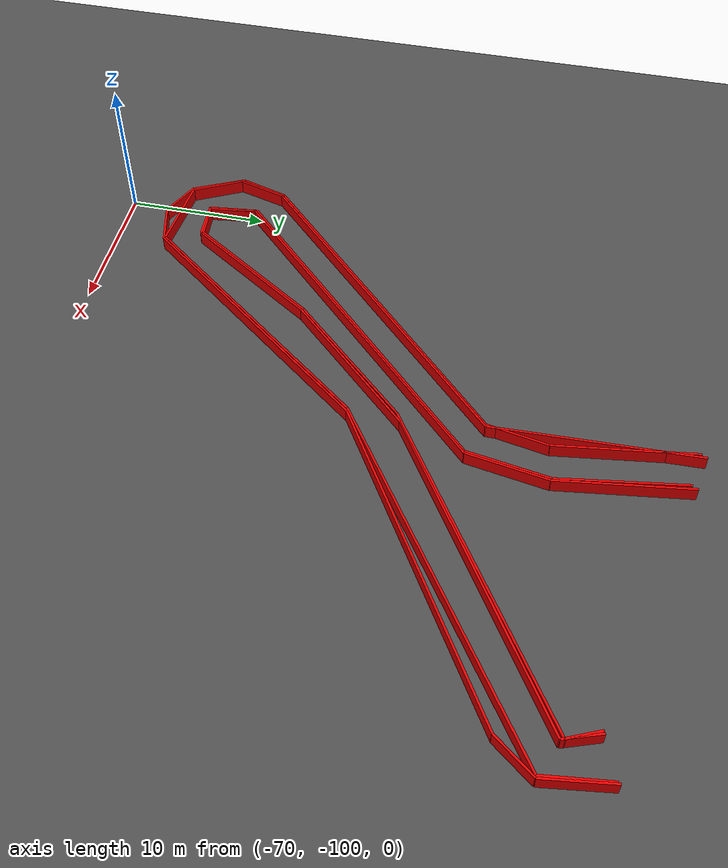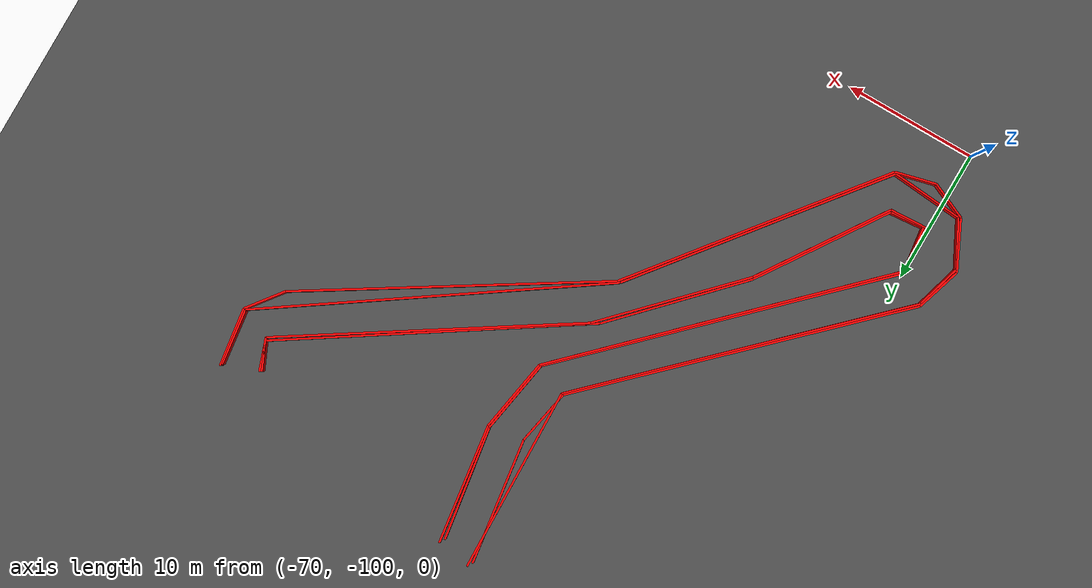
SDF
<sdf version="1.6">
 <world name="track_world">
  <model name="ground_plane">
   <static>true</static>
   <link name="link">
    <collision name="collision">
     <geometry><plane><normal>0 0 1</normal><size>1000 1000</size></plane></geometry>
    </collision>
    <visual name="visual">
     <geometry><plane><normal>0 0 1</normal><size>1000 1000</size></plane></geometry>
     <material><ambient>0.3 0.3 0.3 1</ambient><diffuse>0.3 0.3 0.3 1</diffuse></material>
    </visual>
   </link>
  </model>
  <model name="wall_11">
   <static>true</static>
   <pose>-53.12523416920916 -61.54973182200402 0.5 0 0 -1.435625628145888</pose>
   <link name="link">
    <visual name="visual">
     <geometry><box><size>9.514286059899616 0.15 1.0</size></box></geometry>
     <material><ambient>1 0 0 1</ambient><diffuse>1 0 0 1</diffuse></material>
    </visual>
    <collision name="collision">
     <geometry><box><size>9.514286059899616 0.15 1.0</size></box></geometry>
    </collision>
   </link>
  </model>
  <model name="wall_12">
   <static>true</static>
   <pose>-52.898974169209154 -68.37524182200401 0.5 0 0 -1.7647554740547904</pose>
   <link name="link">
    <visual name="visual">
     <geometry><box><size>4.304229377577341 0.15 1.0</size></box></geometry>
     <material><ambient>1 0 0 1</ambient><diffuse>1 0 0 1</diffuse></material>
    </visual>
    <collision name="collision">
     <geometry><box><size>4.304229377577341 0.15 1.0</size></box></geometry>
    </collision>
   </link>
  </model>
  <model name="wall_13">
   <static>true</static>
   <pose>-62.74128416920916 -79.65053182200401 0.5 0 0 -2.370392319085259</pose>
   <link name="link">
    <visual name="visual">
     <geometry><box><size>26.294336904428693 0.15 1.0</size></box></geometry>
     <material><ambient>1 0 0 1</ambient><diffuse>1 0 0 1</diffuse></material>
    </visual>
    <collision name="collision">
     <geometry><box><size>26.294336904428693 0.15 1.0</size></box></geometry>
    </collision>
   </link>
  </model>
  <model name="wall_14">
   <static>true</static>
   <pose>-72.69672416920916 -90.51101182200401 0.5 0 0 -1.872415373061138</pose>
   <link name="link">
    <visual name="visual">
     <geometry><box><size>3.5543550447865955 0.15 1.0</size></box></geometry>
     <material><ambient>1 0 0 1</ambient><diffuse>1 0 0 1</diffuse></material>
    </visual>
    <collision name="collision">
     <geometry><box><size>3.5543550447865955 0.15 1.0</size></box></geometry>
    </collision>
   </link>
  </model>
  <model name="wall_15">
   <static>true</static>
   <pose>-72.35733416920917 -93.98033182200402 0.5 0 0 -1.1156955182267012</pose>
   <link name="link">
    <visual name="visual">
     <geometry><box><size>3.946419514344623 0.15 1.0</size></box></geometry>
     <material><ambient>1 0 0 1</ambient><diffuse>1 0 0 1</diffuse></material>
    </visual>
    <collision name="collision">
     <geometry><box><size>3.946419514344623 0.15 1.0</size></box></geometry>
    </collision>
   </link>
  </model>
  <model name="wall_16">
   <static>true</static>
   <pose>-70.13244416920915 -96.35606182200402 0.5 0 0 -0.41822432957923056</pose>
   <link name="link">
    <visual name="visual">
     <geometry><box><size>2.9712034216458494 0.15 1.0</size></box></geometry>
     <material><ambient>1 0 0 1</ambient><diffuse>1 0 0 1</diffuse></material>
    </visual>
    <collision name="collision">
     <geometry><box><size>2.9712034216458494 0.15 1.0</size></box></geometry>
    </collision>
   </link>
  </model>
  <model name="wall_17">
   <static>true</static>
   <pose>-67.26648416920915 -96.58232182200402 0.5 0 0 0.24497866312686303</pose>
   <link name="link">
    <visual name="visual">
     <geometry><box><size>3.109646262840842 0.15 1.0</size></box></geometry>
     <material><ambient>1 0 0 1</ambient><diffuse>1 0 0 1</diffuse></material>
    </visual>
    <collision name="collision">
     <geometry><box><size>3.109646262840842 0.15 1.0</size></box></geometry>
    </collision>
   </link>
  </model>
  <model name="wall_18">
   <static>true</static>
   <pose>-59.15883416920916 -87.83360182200403 0.5 0 0 0.9032375815154151</pose>
   <link name="link">
    <visual name="visual">
     <geometry><box><size>21.319861349164537 0.15 1.0</size></box></geometry>
     <material><ambient>1 0 0 1</ambient><diffuse>1 0 0 1</diffuse></material>
    </visual>
    <collision name="collision">
     <geometry><box><size>21.319861349164537 0.15 1.0</size></box></geometry>
    </collision>
   </link>
  </model>
  <model name="wall_19">
   <static>true</static>
   <pose>-42.49101416920916 -73.16441182200401 0.5 0 0 0.5589359023385937</pose>
   <link name="link">
    <visual name="visual">
     <geometry><box><size>23.751672762127733 0.15 1.0</size></box></geometry>
     <material><ambient>1 0 0 1</ambient><diffuse>1 0 0 1</diffuse></material>
    </visual>
    <collision name="collision">
     <geometry><box><size>23.751672762127733 0.15 1.0</size></box></geometry>
    </collision>
   </link>
  </model>
  <model name="wall_20">
   <static>true</static>
   <pose>-31.441984169209157 -65.584701822004 0.5 0 0 0.9179496956941213</pose>
   <link name="link">
    <visual name="visual">
     <geometry><box><size>3.22811696888449 0.15 1.0</size></box></geometry>
     <material><ambient>1 0 0 1</ambient><diffuse>1 0 0 1</diffuse></material>
    </visual>
    <collision name="collision"><geometry><box><size>3.22811696888449 0.15 1.0</size></box></geometry></collision>
   </link>
  </model>
  <model name="wall_21">
   <static>true</static>
   <pose>-30.76320416920916 -62.11538182200401 0.5 0 0 1.7078625011050865</pose>
   <link name="link">
    <visual name="visual">
     <geometry><box><size>4.415774982854082 0.15 1.0</size></box></geometry>
     <material><ambient>1 0 0 1</ambient><diffuse>1 0 0 1</diffuse></material>
    </visual>
    <collision name="collision">
     <geometry><box><size>4.415774982854082 0.15 1.0</size></box></geometry>
    </collision>
   </link>
  </model>
  <model name="wall_57">
   <static>true</static>
   <pose>-30.87633416920916 -62.19080182200401 0.5 0 0 -1.4464413322481349</pose>
   <link name="link">
    <visual name="visual">
     <geometry><box><size>4.25638835563673 0.15 1.0</size></box></geometry>
     <material><ambient>1 0 0 1</ambient><diffuse>1 0 0 1</diffuse></material>
    </visual>
    <collision name="collision"><geometry><box><size>4.25638835563673 0.15 1.0</size></box></geometry></collision>
   </link>
  </model>
  <model name="wall_58">
   <static>true</static>
   <pose>-41.69910416920916 -71.88227182200401 0.5 0 0 -2.5419083384519885</pose>
   <link name="link">
    <visual name="visual">
     <geometry><box><size>26.860216492925 0.15 1.0</size></box></geometry>
     <material><ambient>1 0 0 1</ambient><diffuse>1 0 0 1</diffuse></material>
    </visual>
    <collision name="collision"><geometry><box><size>26.860216492925 0.15 1.0</size></box></geometry></collision>
   </link>
  </model>
  <model name="wall_59">
   <static>true</static>
   <pose>-59.34738416920916 -87.79589182200402 0.5 0 0 -2.237763966398179</pose>
   <link name="link">
    <visual name="visual">
     <geometry><box><size>21.213944759021125 0.15 1.0</size></box></geometry>
     <material><ambient>1 0 0 1</ambient><diffuse>1 0 0 1</diffuse></material>
    </visual>
    <collision name="collision">
     <geometry><box><size>21.213944759021125 0.15 1.0</size></box></geometry>
    </collision>
   </link>
  </model>
  <model name="wall_60">
   <static>true</static>
   <pose>-68.62404416920916 -95.90354182200402 0.5 0 0 3.058451421701353</pose>
   <link name="link">
    <visual name="visual">
     <geometry><box><size>5.4490623787950865 0.15 1.0</size></box></geometry>
     <material><ambient>1 0 0 1</ambient><diffuse>1 0 0 1</diffuse></material>
    </visual>
    <collision name="collision">
     <geometry><box><size>5.4490623787950865 0.15 1.0</size></box></geometry>
    </collision>
   </link>
  </model>
  <model name="wall_61">
   <static>true</static>
   <pose>-72.20649416920915 -94.01804182200402 0.5 0 0 2.0524600043497583</pose>
   <link name="link">
    <visual name="visual">
     <geometry><box><size>3.744509958058607 0.15 1.0</size></box></geometry>
     <material><ambient>1 0 0 1</ambient><diffuse>1 0 0 1</diffuse></material>
    </visual>
    <collision name="collision">
     <geometry><box><size>3.744509958058607 0.15 1.0</size></box></geometry>
    </collision>
   </link>
  </model>
  <model name="wall_62">
   <static>true</static>
   <pose>-72.58359416920916 -90.66185182200401 0.5 0 0 1.2895641248766032</pose>
   <link name="link">
    <visual name="visual">
     <geometry><box><size>3.5326843931492102 0.15 1.0</size></box></geometry>
     <material><ambient>1 0 0 1</ambient><diffuse>1 0 0 1</diffuse></material>
    </visual>
    <collision name="collision">
     <geometry><box><size>3.5326843931492102 0.15 1.0</size></box></geometry>
    </collision>
   </link>
  </model>
  <model name="wall_63">
   <static>true</static>
   <pose>-62.62815416920917 -79.725951822004 0.5 0 0 0.7733019792002686</pose>
   <link name="link">
    <visual name="visual">
     <geometry><box><size>26.453612036665245 0.15 1.0</size></box></geometry>
     <material><ambient>1 0 0 1</ambient><diffuse>1 0 0 1</diffuse></material>
    </visual>
    <collision name="collision">
     <geometry><box><size>26.453612036665245 0.15 1.0</size></box></geometry>
    </collision>
   </link>
  </model>
  <model name="wall_64">
   <static>true</static>
   <pose>-53.35149416920916 -63.47294182200401 0.5 0 0 1.5976715748796535</pose>
   <link name="link">
    <visual name="visual">
     <geometry><box><size>14.033187633050433 0.15 1.0</size></box></geometry>
     <material><ambient>1 0 0 1</ambient><diffuse>1 0 0 1</diffuse></material>
    </visual>
    <collision name="collision">
     <geometry><box><size>14.033187633050433 0.15 1.0</size></box></geometry>
    </collision>
   </link>
  </model>
  <model name="wall_85">
   <static>true</static>
   <pose>-50.56095416920916 -61.54973182200402 0.5 0 0 -1.4214736661011995</pose>
   <link name="link">
    <visual name="visual">
     <geometry><box><size>8.618364545039855 0.15 1.0</size></box></geometry>
     <material><ambient>1 0 0 1</ambient><diffuse>1 0 0 1</diffuse></material>
    </visual>
    <collision name="collision">
     <geometry><box><size>8.618364545039855 0.15 1.0</size></box></geometry>
    </collision>
   </link>
  </model>
  <model name="wall_86">
   <static>true</static>
   <pose>-50.41011416920916 -68.63921182200401 0.5 0 0 -1.7424243951757756</pose>
   <link name="link">
    <visual name="visual">
     <geometry><box><size>5.740844368348607 0.15 1.0</size></box></geometry>
     <material><ambient>1 0 0 1</ambient><diffuse>1 0 0 1</diffuse></material>
    </visual>
    <collision name="collision">
     <geometry><box><size>5.740844368348607 0.15 1.0</size></box></geometry>
    </collision>
   </link>
  </model>
  <model name="wall_87">
   <static>true</static>
   <pose>-60.47868416920916 -80.894961822004 0.5 0 0 -2.364130831499811</pose>
   <link name="link">
    <visual name="visual">
     <geometry><box><size>26.879163186795832 0.15 1.0</size></box></geometry>
     <material><ambient>1 0 0 1</ambient><diffuse>1 0 0 1</diffuse></material>
    </visual>
    <collision name="collision">
     <geometry><box><size>26.879163186795832 0.15 1.0</size></box></geometry>
    </collision>
   </link>
  </model>
  <model name="wall_88">
   <static>true</static>
   <pose>-69.86847416920915 -92.09483182200401 0.5 0 0 -1.4648119688052972</pose>
   <link name="link">
    <visual name="visual">
     <geometry><box><size>3.5647420772897482 0.15 1.0</size></box></geometry>
     <material><ambient>1 0 0 1</ambient><diffuse>1 0 0 1</diffuse></material>
    </visual>
    <collision name="collision">
     <geometry><box><size>3.5647420772897482 0.15 1.0</size></box></geometry>
    </collision>
   </link>
  </model>
  <model name="wall_89">
   <static>true</static>
   <pose>-68.28465416920916 -93.79178182200403 0.5 0 0 0.05400150037596925</pose>
   <link name="link">
    <visual name="visual">
     <geometry><box><size>2.7946137831907936 0.15 1.0</size></box></geometry>
     <material><ambient>1 0 0 1</ambient><diffuse>1 0 0 1</diffuse></material>
    </visual>
    <collision name="collision">
     <geometry><box><size>2.7946137831907936 0.15 1.0</size></box></geometry>
    </collision>
   </link>
  </model>
  <model name="wall_90">
   <static>true</static>
   <pose>-63.83487416920916 -89.15345182200402 0.5 0 0 0.9808889636461287</pose>
   <link name="link">
    <visual name="visual">
     <geometry><box><size>10.9818357314613 0.15 1.0</size></box></geometry>
     <material><ambient>1 0 0 1</ambient><diffuse>1 0 0 1</diffuse></material>
    </visual>
    <collision name="collision"><geometry><box><size>10.9818357314613 0.15 1.0</size></box></geometry></collision>
   </link>
  </model>
  <model name="wall_91">
   <static>true</static>
   <pose>-56.59455416920916 -80.25389182200402 0.5 0 0 0.8030954306552185</pose>
   <link name="link">
    <visual name="visual">
     <geometry><box><size>12.054466156342219 0.15 1.0</size></box></geometry>
     <material><ambient>1 0 0 1</ambient><diffuse>1 0 0 1</diffuse></material>
    </visual>
    <collision name="collision">
     <geometry><box><size>12.054466156342219 0.15 1.0</size></box></geometry>
    </collision>
   </link>
  </model>
  <model name="wall_92">
   <static>true</static>
   <pose>-42.64185416920916 -69.61967182200402 0.5 0 0 0.5727022674440437</pose>
   <link name="link">
    <visual name="visual">
     <geometry><box><size>23.24233449350559 0.15 1.0</size></box></geometry>
     <material><ambient>1 0 0 1</ambient><diffuse>1 0 0 1</diffuse></material>
    </visual>
    <collision name="collision">
     <geometry><box><size>23.24233449350559 0.15 1.0</size></box></geometry>
    </collision>
   </link>
  </model>
  <model name="wall_93">
   <static>true</static>
   <pose>-33.28977416920916 -62.153091822004015 0.5 0 0 1.9117752802912427</pose>
   <link name="link">
    <visual name="visual">
     <geometry><box><size>2.480848013240631 0.15 1.0</size></box></geometry>
     <material><ambient>1 0 0 1</ambient><diffuse>1 0 0 1</diffuse></material>
    </visual>
    <collision name="collision">
     <geometry><box><size>2.480848013240631 0.15 1.0</size></box></geometry>
    </collision>
   </link>
  </model>
  <model name="wall_130">
   <static>true</static>
   <pose>-33.40290416920916 -62.077671822004014 0.5 0 0 -1.152571997215667</pose>
   <link name="link">
    <visual name="visual">
     <geometry><box><size>2.2284025662343825 0.15 1.0</size></box></geometry>
     <material><ambient>1 0 0 1</ambient><diffuse>1 0 0 1</diffuse></material>
    </visual>
    <collision name="collision">
     <geometry><box><size>2.2284025662343825 0.15 1.0</size></box></geometry>
    </collision>
   </link>
  </model>
  <model name="wall_131">
   <static>true</static>
   <pose>-42.98124416920916 -69.65738182200401 0.5 0 0 -2.562315832067652</pose>
   <link name="link">
    <visual name="visual">
     <geometry><box><size>23.97264770618381 0.15 1.0</size></box></geometry>
     <material><ambient>1 0 0 1</ambient><diffuse>1 0 0 1</diffuse></material>
    </visual>
    <collision name="collision">
     <geometry><box><size>23.97264770618381 0.15 1.0</size></box></geometry>
    </collision>
   </link>
  </model>
  <model name="wall_132">
   <static>true</static>
   <pose>-56.933944169209155 -80.329311822004 0.5 0 0 -2.3327246220776208</pose>
   <link name="link">
    <visual name="visual">
     <geometry><box><size>11.362417865524929 0.15 1.0</size></box></geometry>
     <material><ambient>1 0 0 1</ambient><diffuse>1 0 0 1</diffuse></material>
    </visual>
    <collision name="collision">
     <geometry><box><size>11.362417865524929 0.15 1.0</size></box></geometry>
    </collision>
   </link>
  </model>
  <model name="wall_133">
   <static>true</static>
   <pose>-63.91029416920916 -89.00261182200401 0.5 0 0 -2.160703689943664</pose>
   <link name="link">
    <visual name="visual">
     <geometry><box><size>10.981835731461297 0.15 1.0</size></box></geometry>
     <material><ambient>1 0 0 1</ambient><diffuse>1 0 0 1</diffuse></material>
    </visual>
    <collision name="collision">
     <geometry><box><size>10.981835731461297 0.15 1.0</size></box></geometry>
    </collision>
   </link>
  </model>
  <model name="wall_134">
   <static>true</static>
   <pose>-68.24694416920916 -93.67865182200401 0.5 0 0 -3.053585280062054</pose>
   <link name="link">
    <visual name="visual">
     <geometry><box><size>2.574242705340734 0.15 1.0</size></box></geometry>
     <material><ambient>1 0 0 1</ambient><diffuse>1 0 0 1</diffuse></material>
    </visual>
    <collision name="collision">
     <geometry><box><size>2.574242705340734 0.15 1.0</size></box></geometry>
    </collision>
   </link>
  </model>
  <model name="wall_135">
   <static>true</static>
   <pose>-69.75534416920917 -92.13254182200401 0.5 0 0 1.7063240407803997</pose>
   <link name="link">
    <visual name="visual">
     <geometry><box><size>3.349191523457559 0.15 1.0</size></box></geometry>
     <material><ambient>1 0 0 1</ambient><diffuse>1 0 0 1</diffuse></material>
    </visual>
    <collision name="collision">
     <geometry><box><size>3.349191523457559 0.15 1.0</size></box></geometry>
    </collision>
   </link>
  </model>
  <model name="wall_136">
   <static>true</static>
   <pose>-60.36555416920916 -80.97038182200401 0.5 0 0 0.7794810726914211</pose>
   <link name="link">
    <visual name="visual">
     <geometry><box><size>27.038780011598163 0.15 1.0</size></box></geometry>
     <material><ambient>1 0 0 1</ambient><diffuse>1 0 0 1</diffuse></material>
    </visual>
    <collision name="collision">
     <geometry><box><size>27.038780011598163 0.15 1.0</size></box></geometry>
    </collision>
   </link>
  </model>
  <model name="wall_137">
   <static>true</static>
   <pose>-50.259274169209164 -68.676921822004 0.5 0 0 1.3968951376570098</pose>
   <link name="link">
    <visual name="visual">
     <geometry><box><size>5.666547077189071 0.15 1.0</size></box></geometry>
     <material><ambient>1 0 0 1</ambient><diffuse>1 0 0 1</diffuse></material>
    </visual>
    <collision name="collision">
     <geometry><box><size>5.666547077189071 0.15 1.0</size></box></geometry>
    </collision>
   </link>
  </model>
  <model name="wall_138">
   <static>true</static>
   <pose>-50.37240416920916 -61.39889182200402 0.5 0 0 1.70444857411209</pose>
   <link name="link">
    <visual name="visual">
     <geometry><box><size>9.055740674224275 0.15 1.0</size></box></geometry>
     <material><ambient>1 0 0 1</ambient><diffuse>1 0 0 1</diffuse></material>
    </visual>
    <collision name="collision">
     <geometry><box><size>9.055740674224275 0.15 1.0</size></box></geometry>
    </collision>
   </link>
  </model>
 </world>
</sdf>
